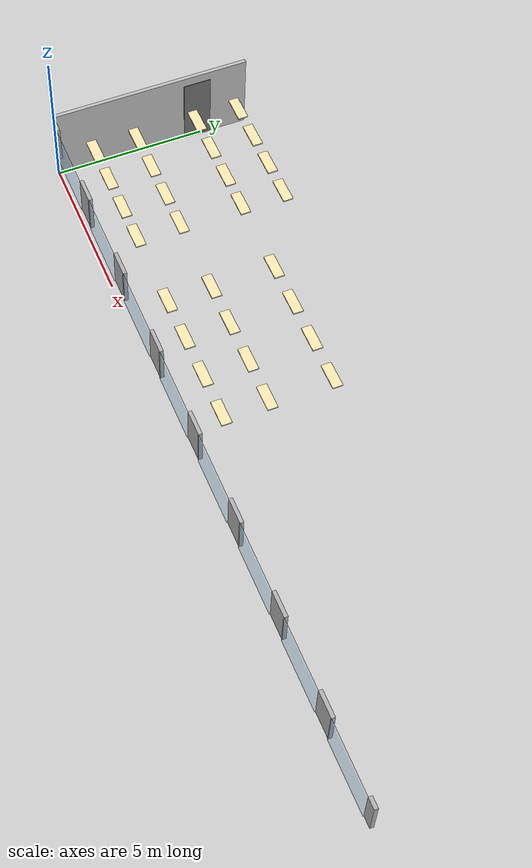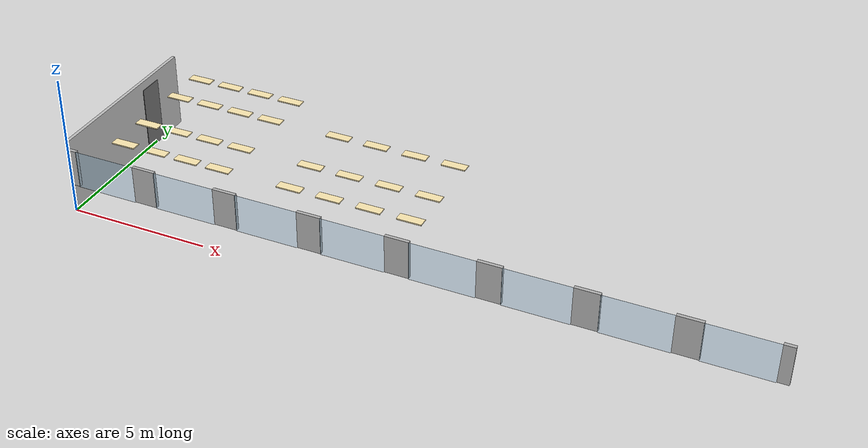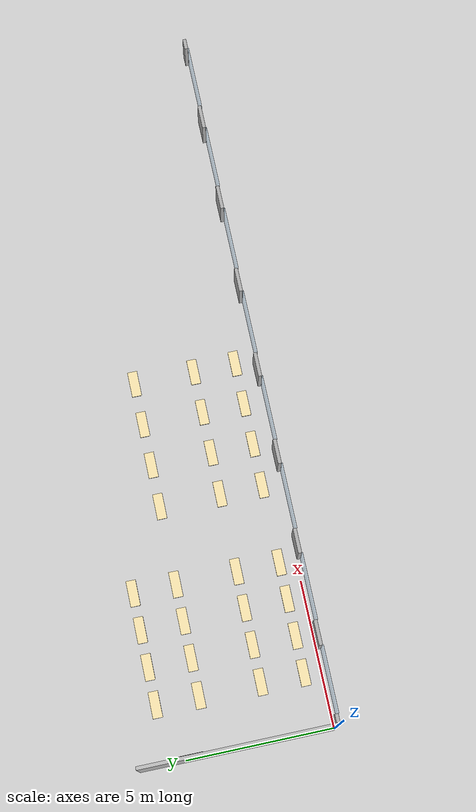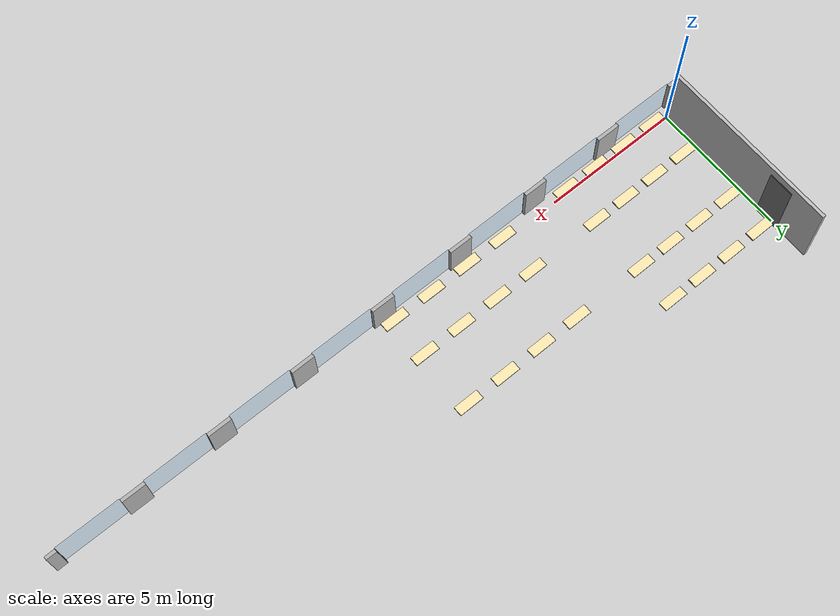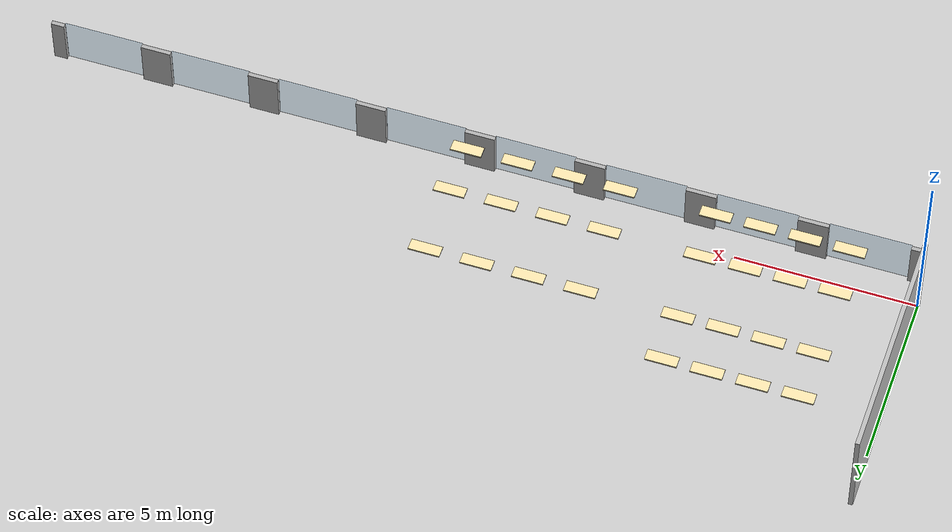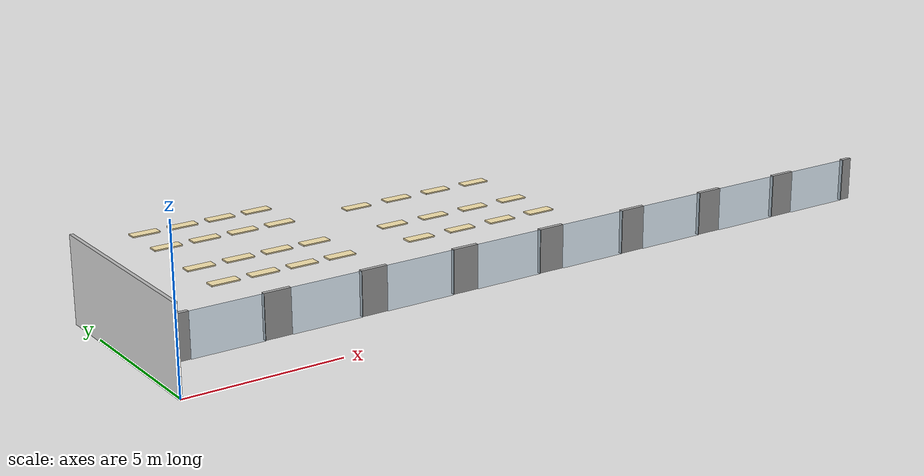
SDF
<sdf version="1.10">
 <world name="room_427">
  <model name="B_D_wall_solid_with_door3_panel">
   <static>true</static>
   <pose>0 3.27 1.375 0 0 0</pose>
   <link name="wall_B_D_solid">
    <collision name="collision"><geometry><box><size>0.12 6.54 2.75</size></box></geometry></collision>
    <visual name="visual">
     <geometry><box><size>0.12 6.54 2.75</size></box></geometry>
     <material><ambient>0.75 0.75 0.75 1</ambient><diffuse>0.75 0.75 0.75 1</diffuse></material>
    </visual>
   </link>
   <link name="door_3_panel_near_D">
    <pose>0.065 1.5682 -0.16 0 0 0</pose>
    <visual name="visual">
     <geometry><box><size>0.04 0.9144 2.43</size></box></geometry>
     <material><ambient>0.45 0.45 0.45 1</ambient><diffuse>0.45 0.45 0.45 1</diffuse></material>
    </visual>
   </link>
  </model>
  <model name="window_wall_vertical_pieces">
   <static>true</static>
   <link name="window_side_left">
    <pose>0.1725 0 1.765 0 0 0</pose>
    <collision name="collision"><geometry><box><size>0.345 0.12 1.35</size></box></geometry></collision>
    <visual name="visual">
     <geometry><box><size>0.345 0.12 1.35</size></box></geometry>
     <material><ambient>0.7 0.7 0.7 1</ambient><diffuse>0.7 0.7 0.7 1</diffuse></material>
    </visual>
   </link>
   <link name="window_gap_1">
    <pose>2.97 0 1.765 0 0 0</pose>
    <collision name="collision"><geometry><box><size>0.83 0.12 1.35</size></box></geometry></collision>
    <visual name="visual">
     <geometry><box><size>0.83 0.12 1.35</size></box></geometry>
     <material><ambient>0.7 0.7 0.7 1</ambient><diffuse>0.7 0.7 0.7 1</diffuse></material>
    </visual>
   </link>
   <link name="window_gap_2">
    <pose>6.01 0 1.765 0 0 0</pose>
    <collision name="collision"><geometry><box><size>0.83 0.12 1.35</size></box></geometry></collision>
    <visual name="visual">
     <geometry><box><size>0.83 0.12 1.35</size></box></geometry>
     <material><ambient>0.7 0.7 0.7 1</ambient><diffuse>0.7 0.7 0.7 1</diffuse></material>
    </visual>
   </link>
   <link name="window_gap_3">
    <pose>9.05 0 1.765 0 0 0</pose>
    <collision name="collision"><geometry><box><size>0.83 0.12 1.35</size></box></geometry></collision>
    <visual name="visual">
     <geometry><box><size>0.83 0.12 1.35</size></box></geometry>
     <material><ambient>0.7 0.7 0.7 1</ambient><diffuse>0.7 0.7 0.7 1</diffuse></material>
    </visual>
   </link>
   <link name="window_gap_4">
    <pose>12.09 0 1.765 0 0 0</pose>
    <collision name="collision"><geometry><box><size>0.83 0.12 1.35</size></box></geometry></collision>
    <visual name="visual">
     <geometry><box><size>0.83 0.12 1.35</size></box></geometry>
     <material><ambient>0.7 0.7 0.7 1</ambient><diffuse>0.7 0.7 0.7 1</diffuse></material>
    </visual>
   </link>
   <link name="window_gap_5">
    <pose>15.13 0 1.765 0 0 0</pose>
    <collision name="collision"><geometry><box><size>0.83 0.12 1.35</size></box></geometry></collision>
    <visual name="visual">
     <geometry><box><size>0.83 0.12 1.35</size></box></geometry>
     <material><ambient>0.7 0.7 0.7 1</ambient><diffuse>0.7 0.7 0.7 1</diffuse></material>
    </visual>
   </link>
   <link name="window_gap_6">
    <pose>18.17 0 1.765 0 0 0</pose>
    <collision name="collision"><geometry><box><size>0.83 0.12 1.35</size></box></geometry></collision>
    <visual name="visual">
     <geometry><box><size>0.83 0.12 1.35</size></box></geometry>
     <material><ambient>0.7 0.7 0.7 1</ambient><diffuse>0.7 0.7 0.7 1</diffuse></material>
    </visual>
   </link>
   <link name="window_gap_7">
    <pose>21.21 0 1.765 0 0 0</pose>
    <collision name="collision"><geometry><box><size>0.83 0.12 1.35</size></box></geometry></collision>
    <visual name="visual">
     <geometry><box><size>0.83 0.12 1.35</size></box></geometry>
     <material><ambient>0.7 0.7 0.7 1</ambient><diffuse>0.7 0.7 0.7 1</diffuse></material>
    </visual>
   </link>
   <link name="window_side_right">
    <pose>24.0175 0 1.765 0 0 0</pose>
    <collision name="collision"><geometry><box><size>0.365 0.12 1.35</size></box></geometry></collision>
    <visual name="visual">
     <geometry><box><size>0.365 0.12 1.35</size></box></geometry>
     <material><ambient>0.7 0.7 0.7 1</ambient><diffuse>0.7 0.7 0.7 1</diffuse></material>
    </visual>
   </link>
  </model>
  <model name="window_glass_panes">
   <static>true</static>
   <link name="window_1">
    <pose>1.45 -0.07 1.765 0 0 0</pose>
    <visual name="visual">
     <geometry><box><size>2.21 0.03 1.35</size></box></geometry>
     <material>
      <ambient>0.55 0.75 0.9 0.35</ambient>
      <diffuse>0.55 0.75 0.9 0.35</diffuse>
      <specular>0.8 0.8 0.8 1</specular>
     </material>
     <transparency>0.55</transparency>
    </visual>
   </link>
   <link name="window_2">
    <pose>4.49 -0.07 1.765 0 0 0</pose>
    <visual name="visual">
     <geometry><box><size>2.21 0.03 1.35</size></box></geometry>
     <material>
      <ambient>0.55 0.75 0.9 0.35</ambient>
      <diffuse>0.55 0.75 0.9 0.35</diffuse>
      <specular>0.8 0.8 0.8 1</specular>
     </material>
     <transparency>0.55</transparency>
    </visual>
   </link>
   <link name="window_3">
    <pose>7.53 -0.07 1.765 0 0 0</pose>
    <visual name="visual">
     <geometry><box><size>2.21 0.03 1.35</size></box></geometry>
     <material>
      <ambient>0.55 0.75 0.9 0.35</ambient>
      <diffuse>0.55 0.75 0.9 0.35</diffuse>
      <specular>0.8 0.8 0.8 1</specular>
     </material>
     <transparency>0.55</transparency>
    </visual>
   </link>
   <link name="window_4">
    <pose>10.57 -0.07 1.765 0 0 0</pose>
    <visual name="visual">
     <geometry><box><size>2.21 0.03 1.35</size></box></geometry>
     <material>
      <ambient>0.55 0.75 0.9 0.35</ambient>
      <diffuse>0.55 0.75 0.9 0.35</diffuse>
      <specular>0.8 0.8 0.8 1</specular>
     </material>
     <transparency>0.55</transparency>
    </visual>
   </link>
   <link name="window_5">
    <pose>13.61 -0.07 1.765 0 0 0</pose>
    <visual name="visual">
     <geometry><box><size>2.21 0.03 1.35</size></box></geometry>
     <material>
      <ambient>0.55 0.75 0.9 0.35</ambient>
      <diffuse>0.55 0.75 0.9 0.35</diffuse>
      <specular>0.8 0.8 0.8 1</specular>
     </material>
     <transparency>0.55</transparency>
    </visual>
   </link>
   <link name="window_6">
    <pose>16.65 -0.07 1.765 0 0 0</pose>
    <visual name="visual">
     <geometry><box><size>2.21 0.03 1.35</size></box></geometry>
     <material>
      <ambient>0.55 0.75 0.9 0.35</ambient>
      <diffuse>0.55 0.75 0.9 0.35</diffuse>
      <specular>0.8 0.8 0.8 1</specular>
     </material>
     <transparency>0.55</transparency>
    </visual>
   </link>
   <link name="window_7">
    <pose>19.69 -0.07 1.765 0 0 0</pose>
    <visual name="visual">
     <geometry><box><size>2.21 0.03 1.35</size></box></geometry>
     <material>
      <ambient>0.55 0.75 0.9 0.35</ambient>
      <diffuse>0.55 0.75 0.9 0.35</diffuse>
      <specular>0.8 0.8 0.8 1</specular>
     </material>
     <transparency>0.55</transparency>
    </visual>
   </link>
   <link name="window_8">
    <pose>22.73 -0.07 1.765 0 0 0</pose>
    <visual name="visual">
     <geometry><box><size>2.21 0.03 1.35</size></box></geometry>
     <material>
      <ambient>0.55 0.75 0.9 0.35</ambient>
      <diffuse>0.55 0.75 0.9 0.35</diffuse>
      <specular>0.8 0.8 0.8 1</specular>
     </material>
     <transparency>0.55</transparency>
    </visual>
   </link>
  </model>
  <model name="ceiling_lights_zone1">
   <static>true</static>
   <link name="ceiling_lights_zone1_r1_c1">
    <pose>1.8 0.75 2.70 0 0 0</pose>
    <visual name="visual">
     <geometry><box><size>0.85 0.32 0.04</size></box></geometry>
     <material>
      <ambient>1.0 0.92 0.7 1</ambient>
      <diffuse>1.0 0.92 0.7 1</diffuse>
      <emissive>1.0 0.92 0.7 1</emissive>
     </material>
    </visual>
   </link>
   <link name="ceiling_lights_zone1_r1_c2">
    <pose>1.8 2.15 2.70 0 0 0</pose>
    <visual name="visual">
     <geometry><box><size>0.85 0.32 0.04</size></box></geometry>
     <material>
      <ambient>1.0 0.92 0.7 1</ambient>
      <diffuse>1.0 0.92 0.7 1</diffuse>
      <emissive>1.0 0.92 0.7 1</emissive>
     </material>
    </visual>
   </link>
   <link name="ceiling_lights_zone1_r1_c3">
    <pose>1.8 4.15 2.70 0 0 0</pose>
    <visual name="visual">
     <geometry><box><size>0.85 0.32 0.04</size></box></geometry>
     <material>
      <ambient>1.0 0.92 0.7 1</ambient>
      <diffuse>1.0 0.92 0.7 1</diffuse>
      <emissive>1.0 0.92 0.7 1</emissive>
     </material>
    </visual>
   </link>
   <link name="ceiling_lights_zone1_r1_c4">
    <pose>1.8 5.55 2.70 0 0 0</pose>
    <visual name="visual">
     <geometry><box><size>0.85 0.32 0.04</size></box></geometry>
     <material>
      <ambient>1.0 0.92 0.7 1</ambient>
      <diffuse>1.0 0.92 0.7 1</diffuse>
      <emissive>1.0 0.92 0.7 1</emissive>
     </material>
    </visual>
   </link>
   <link name="ceiling_lights_zone1_r2_c1">
    <pose>3.0 0.75 2.70 0 0 0</pose>
    <visual name="visual">
     <geometry><box><size>0.85 0.32 0.04</size></box></geometry>
     <material>
      <ambient>1.0 0.92 0.7 1</ambient>
      <diffuse>1.0 0.92 0.7 1</diffuse>
      <emissive>1.0 0.92 0.7 1</emissive>
     </material>
    </visual>
   </link>
   <link name="ceiling_lights_zone1_r2_c2">
    <pose>3.0 2.15 2.70 0 0 0</pose>
    <visual name="visual">
     <geometry><box><size>0.85 0.32 0.04</size></box></geometry>
     <material>
      <ambient>1.0 0.92 0.7 1</ambient>
      <diffuse>1.0 0.92 0.7 1</diffuse>
      <emissive>1.0 0.92 0.7 1</emissive>
     </material>
    </visual>
   </link>
   <link name="ceiling_lights_zone1_r2_c3">
    <pose>3.0 4.15 2.70 0 0 0</pose>
    <visual name="visual">
     <geometry><box><size>0.85 0.32 0.04</size></box></geometry>
     <material>
      <ambient>1.0 0.92 0.7 1</ambient>
      <diffuse>1.0 0.92 0.7 1</diffuse>
      <emissive>1.0 0.92 0.7 1</emissive>
     </material>
    </visual>
   </link>
   <link name="ceiling_lights_zone1_r2_c4">
    <pose>3.0 5.55 2.70 0 0 0</pose>
    <visual name="visual">
     <geometry><box><size>0.85 0.32 0.04</size></box></geometry>
     <material>
      <ambient>1.0 0.92 0.7 1</ambient>
      <diffuse>1.0 0.92 0.7 1</diffuse>
      <emissive>1.0 0.92 0.7 1</emissive>
     </material>
    </visual>
   </link>
   <link name="ceiling_lights_zone1_r3_c1">
    <pose>4.2 0.75 2.70 0 0 0</pose>
    <visual name="visual">
     <geometry><box><size>0.85 0.32 0.04</size></box></geometry>
     <material>
      <ambient>1.0 0.92 0.7 1</ambient>
      <diffuse>1.0 0.92 0.7 1</diffuse>
      <emissive>1.0 0.92 0.7 1</emissive>
     </material>
    </visual>
   </link>
   <link name="ceiling_lights_zone1_r3_c2">
    <pose>4.2 2.15 2.70 0 0 0</pose>
    <visual name="visual">
     <geometry><box><size>0.85 0.32 0.04</size></box></geometry>
     <material>
      <ambient>1.0 0.92 0.7 1</ambient>
      <diffuse>1.0 0.92 0.7 1</diffuse>
      <emissive>1.0 0.92 0.7 1</emissive>
     </material>
    </visual>
   </link>
   <link name="ceiling_lights_zone1_r3_c3">
    <pose>4.2 4.15 2.70 0 0 0</pose>
    <visual name="visual">
     <geometry><box><size>0.85 0.32 0.04</size></box></geometry>
     <material>
      <ambient>1.0 0.92 0.7 1</ambient>
      <diffuse>1.0 0.92 0.7 1</diffuse>
      <emissive>1.0 0.92 0.7 1</emissive>
     </material>
    </visual>
   </link>
   <link name="ceiling_lights_zone1_r3_c4">
    <pose>4.2 5.55 2.70 0 0 0</pose>
    <visual name="visual">
     <geometry><box><size>0.85 0.32 0.04</size></box></geometry>
     <material>
      <ambient>1.0 0.92 0.7 1</ambient>
      <diffuse>1.0 0.92 0.7 1</diffuse>
      <emissive>1.0 0.92 0.7 1</emissive>
     </material>
    </visual>
   </link>
   <link name="ceiling_lights_zone1_r4_c1">
    <pose>5.4 0.75 2.70 0 0 0</pose>
    <visual name="visual">
     <geometry><box><size>0.85 0.32 0.04</size></box></geometry>
     <material>
      <ambient>1.0 0.92 0.7 1</ambient>
      <diffuse>1.0 0.92 0.7 1</diffuse>
      <emissive>1.0 0.92 0.7 1</emissive>
     </material>
    </visual>
   </link>
   <link name="ceiling_lights_zone1_r4_c2">
    <pose>5.4 2.15 2.70 0 0 0</pose>
    <visual name="visual">
     <geometry><box><size>0.85 0.32 0.04</size></box></geometry>
     <material>
      <ambient>1.0 0.92 0.7 1</ambient>
      <diffuse>1.0 0.92 0.7 1</diffuse>
      <emissive>1.0 0.92 0.7 1</emissive>
     </material>
    </visual>
   </link>
   <link name="ceiling_lights_zone1_r4_c3">
    <pose>5.4 4.15 2.70 0 0 0</pose>
    <visual name="visual">
     <geometry><box><size>0.85 0.32 0.04</size></box></geometry>
     <material>
      <ambient>1.0 0.92 0.7 1</ambient>
      <diffuse>1.0 0.92 0.7 1</diffuse>
      <emissive>1.0 0.92 0.7 1</emissive>
     </material>
    </visual>
   </link>
   <link name="ceiling_lights_zone1_r4_c4">
    <pose>5.4 5.55 2.70 0 0 0</pose>
    <visual name="visual">
     <geometry><box><size>0.85 0.32 0.04</size></box></geometry>
     <material>
      <ambient>1.0 0.92 0.7 1</ambient>
      <diffuse>1.0 0.92 0.7 1</diffuse>
      <emissive>1.0 0.92 0.7 1</emissive>
     </material>
    </visual>
   </link>
  </model>
  <model name="ceiling_lights_zone2">
   <static>true</static>
   <link name="ceiling_lights_zone2_r1_c1">
    <pose>8.0 0.75 2.70 0 0 0</pose>
    <visual name="visual">
     <geometry><box><size>0.85 0.32 0.04</size></box></geometry>
     <material>
      <ambient>1.0 0.92 0.7 1</ambient>
      <diffuse>1.0 0.92 0.7 1</diffuse>
      <emissive>1.0 0.92 0.7 1</emissive>
     </material>
    </visual>
   </link>
   <link name="ceiling_lights_zone2_r1_c2">
    <pose>8.0 2.15 2.70 0 0 0</pose>
    <visual name="visual">
     <geometry><box><size>0.85 0.32 0.04</size></box></geometry>
     <material>
      <ambient>1.0 0.92 0.7 1</ambient>
      <diffuse>1.0 0.92 0.7 1</diffuse>
      <emissive>1.0 0.92 0.7 1</emissive>
     </material>
    </visual>
   </link>
   <link name="ceiling_lights_zone2_r1_c3">
    <pose>8.0 4.15 2.70 0 0 0</pose>
    <visual name="visual">
     <geometry><box><size>0.85 0.32 0.04</size></box></geometry>
     <material>
      <ambient>1.0 0.92 0.7 1</ambient>
      <diffuse>1.0 0.92 0.7 1</diffuse>
      <emissive>1.0 0.92 0.7 1</emissive>
     </material>
    </visual>
   </link>
   <link name="ceiling_lights_zone2_r2_c1">
    <pose>9.4 0.75 2.70 0 0 0</pose>
    <visual name="visual">
     <geometry><box><size>0.85 0.32 0.04</size></box></geometry>
     <material>
      <ambient>1.0 0.92 0.7 1</ambient>
      <diffuse>1.0 0.92 0.7 1</diffuse>
      <emissive>1.0 0.92 0.7 1</emissive>
     </material>
    </visual>
   </link>
   <link name="ceiling_lights_zone2_r2_c2">
    <pose>9.4 2.15 2.70 0 0 0</pose>
    <visual name="visual">
     <geometry><box><size>0.85 0.32 0.04</size></box></geometry>
     <material>
      <ambient>1.0 0.92 0.7 1</ambient>
      <diffuse>1.0 0.92 0.7 1</diffuse>
      <emissive>1.0 0.92 0.7 1</emissive>
     </material>
    </visual>
   </link>
   <link name="ceiling_lights_zone2_r2_c3">
    <pose>9.4 4.15 2.70 0 0 0</pose>
    <visual name="visual">
     <geometry><box><size>0.85 0.32 0.04</size></box></geometry>
     <material>
      <ambient>1.0 0.92 0.7 1</ambient>
      <diffuse>1.0 0.92 0.7 1</diffuse>
      <emissive>1.0 0.92 0.7 1</emissive>
     </material>
    </visual>
   </link>
   <link name="ceiling_lights_zone2_r3_c1">
    <pose>10.8 0.75 2.70 0 0 0</pose>
    <visual name="visual">
     <geometry><box><size>0.85 0.32 0.04</size></box></geometry>
     <material>
      <ambient>1.0 0.92 0.7 1</ambient>
      <diffuse>1.0 0.92 0.7 1</diffuse>
      <emissive>1.0 0.92 0.7 1</emissive>
     </material>
    </visual>
   </link>
   <link name="ceiling_lights_zone2_r3_c2">
    <pose>10.8 2.15 2.70 0 0 0</pose>
    <visual name="visual">
     <geometry><box><size>0.85 0.32 0.04</size></box></geometry>
     <material>
      <ambient>1.0 0.92 0.7 1</ambient>
      <diffuse>1.0 0.92 0.7 1</diffuse>
      <emissive>1.0 0.92 0.7 1</emissive>
     </material>
    </visual>
   </link>
   <link name="ceiling_lights_zone2_r3_c3">
    <pose>10.8 4.15 2.70 0 0 0</pose>
    <visual name="visual">
     <geometry><box><size>0.85 0.32 0.04</size></box></geometry>
     <material>
      <ambient>1.0 0.92 0.7 1</ambient>
      <diffuse>1.0 0.92 0.7 1</diffuse>
      <emissive>1.0 0.92 0.7 1</emissive>
     </material>
    </visual>
   </link>
   <link name="ceiling_lights_zone2_r4_c1">
    <pose>12.2 0.75 2.70 0 0 0</pose>
    <visual name="visual">
     <geometry><box><size>0.85 0.32 0.04</size></box></geometry>
     <material>
      <ambient>1.0 0.92 0.7 1</ambient>
      <diffuse>1.0 0.92 0.7 1</diffuse>
      <emissive>1.0 0.92 0.7 1</emissive>
     </material>
    </visual>
   </link>
   <link name="ceiling_lights_zone2_r4_c2">
    <pose>12.2 2.15 2.70 0 0 0</pose>
    <visual name="visual">
     <geometry><box><size>0.85 0.32 0.04</size></box></geometry>
     <material>
      <ambient>1.0 0.92 0.7 1</ambient>
      <diffuse>1.0 0.92 0.7 1</diffuse>
      <emissive>1.0 0.92 0.7 1</emissive>
     </material>
    </visual>
   </link>
   <link name="ceiling_lights_zone2_r4_c3">
    <pose>12.2 4.15 2.70 0 0 0</pose>
    <visual name="visual">
     <geometry><box><size>0.85 0.32 0.04</size></box></geometry>
     <material>
      <ambient>1.0 0.92 0.7 1</ambient>
      <diffuse>1.0 0.92 0.7 1</diffuse>
      <emissive>1.0 0.92 0.7 1</emissive>
     </material>
    </visual>
   </link>
  </model>
 </world>
</sdf>
